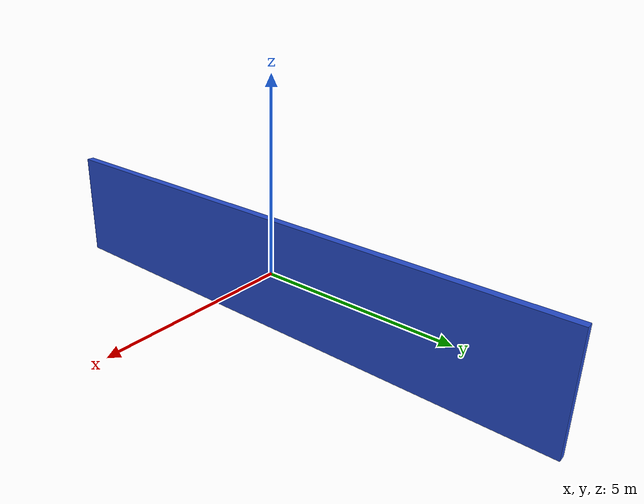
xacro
<?xml version="1.0" encoding="utf-8"?>

<robot name="wall" xmlns:xacro="http://www.ros.org/wiki/xacro">
    <link name="wall">
        <inertial>
          <mass value="10" />
          <inertia  ixx="0.0001" ixy="0.0"  ixz="0.0"  iyy="0.0001"  iyz="0.0"  izz="0.0001" />
        </inertial>
        <visual>
          <geometry>
            <box size="0.2 15 3"/>
          </geometry>
        </visual>
        <collision>
          <geometry>
            <box size="0.2 15 3"/>
          </geometry>
        </collision>
      </link>
      <gazebo reference="wall">
        <material>Gazebo/Blue</material>
      </gazebo>
      <gazebo>
        <static>true</static>
      </gazebo>
  </robot>
